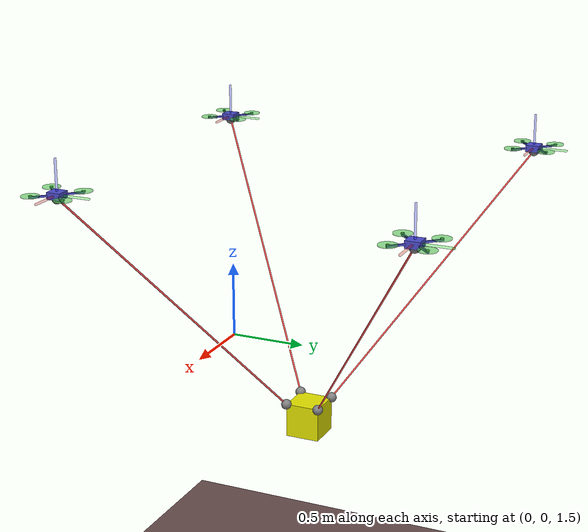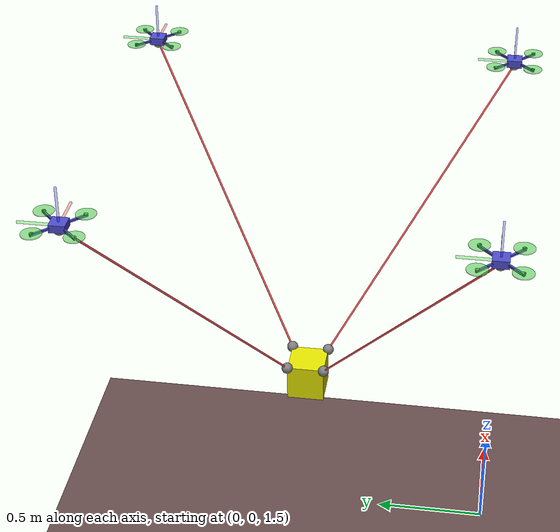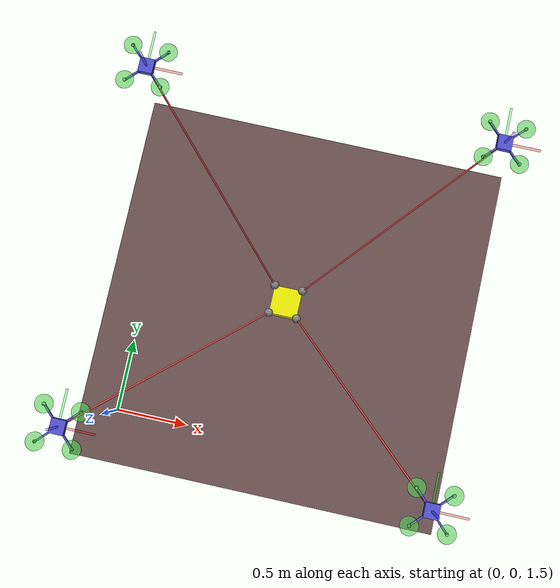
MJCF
<!--
Quadcopter with x configuration.
Front: Along body X-axis
-->

<mujoco model="quadrotor_x">
    <compiler angle="degree" inertiafromgeom="true" coordinate="local" />
    <option timestep="0.01" gravity="0 0 0" density="1" viscosity="1e-5" integrator="RK4" />

    <default>
        <joint armature="1" damping="1" limited="true" />
        <geom conaffinity="0" condim="3" density="5.0" friction="1 0.5 0.5" margin="0.01"
            rgba="0.8 0.6 0.4 1" />
    </default>

    <asset>
        <texture builtin="gradient" type="skybox" height="100" width="100" rgb1="1 1 1" rgb2="0 0 0" />
        <texture name="texgeom" builtin="flat" height="1278" mark="cross" markrgb="1 1 1"
            random="0.01" rgb1="0.8 0.6 0.4" rgb2="0.8 0.6 0.4" type="cube" width="127" />
        <texture name="texplane" builtin="checker" height="100" width="100" rgb1="0 0 0"
            rgb2="0.8 0.8 0.8" type="2d" />
        <material name="MatPlane" reflectance="0" shininess="1" specular="1" texrepeat="60 60"
            texture="texplane" />
        <material name="geom" texture="texgeom" texuniform="true" />
    </asset>

    <worldbody>
        <light cutoff="100" diffuse="1 1 1" dir="-0 0 -1.3" directional="true" exponent="1"
            pos="0 0 1.3" specular=".1 .1 .1" />
        <geom type="plane" conaffinity="1" condim="3" material="MatPlane" name="floor" pos="0 0 0"
            rgba="0.4 0.3 0.3 1" size="5 5 0.2" />

        <!-- core1 -->
        <body name="core1" pos="0 0 3.0">
            <joint name="root1" type="free" damping="0" armature="0" pos="0 0 0" limited="false" />
            <camera name="track1" mode="trackcom" pos="0 -3 1.0" xyaxes="1 0 0 0 0 1" />

            <!-- center -->
            <geom name="core_geom1" type="box" pos="0 0 0" quat="1 0 0 0" size=".04 .04 .02"
                rgba=".3 .3 .8 1" mass=".1" />
            <site name='qua_con1' pos='0 0 -0.02' size='0.03'/>

            <geom name="arm_front_left1" type="box" pos=".07 .07 0" size=".05 .005 .005"
                quat=".924 0 0 .383" rgba=".3 .3 .8 1" mass=".025" />
            <geom name="arm_front_right1" type="box" pos=".07 -.07 0" size=".05 .005 .005"
                quat=".383 0 0 .924" rgba=".3 .3 .8 1" mass=".025" />
            <geom name="arm_back_right1" type="box" pos="-.07 -.07 0" size=".05 .005 .005"
                quat="-.383 0 0 .924" rgba=".3 .3 .8 1" mass=".025" />
            <geom name="arm_back_left1" type="box" pos="-.07 .07 0" size=".05 .005 .005"
                quat=".924 0 0 -.383" rgba=".3 .3 .8 1" mass=".025" />

            <site name="motor_front_left1" type="cylinder" pos=".1 .1 .0075" size=".01 .0025"
                quat="1 0 0 0" rgba=".3 .8 .3 1" />
            <site name="motor_front_right1" type="cylinder" pos=".1 -.1 .0075" size=".01 .0025"
                quat="1 0 0 0" rgba=".3 .8 .3 1" />
            <site name="motor_back_right1" type="cylinder" pos="-.1 -.1 .0075" size=".01 .0025"
                quat="1 0 0 0" rgba=".3 .8 .3 1" />
            <site name="motor_back_left1" type="cylinder" pos="-.1  .1 .0075" size=".01 .0025"
                quat="1 0 0 0" rgba=".3 .8 .3 1" />

            <geom name="thruster_front_left1" type="cylinder" pos=".1 .1 .0075" size=".05 .0025"
                quat="1 0 0 0" rgba=".3 .8 .3 0.6" mass=".025" />
            <geom name="thruster_front_right1" type="cylinder" pos=".1 -.1 .0075" size=".05 .0025"
                quat="1 0 0 0" rgba=".3 .8 .3 0.6" mass=".025" />
            <geom name="thruster_back_right1" type="cylinder" pos="-.1 -.1 .0075" size=".05 .0025"
                quat="1 0 0 0" rgba=".3 .8 .3 0.6" mass=".025" />
            <geom name="thruster_back_left1" type="cylinder" pos="-.1 .1 .0075" size=".05 .0025"
                quat="1 0 0 0" rgba=".3 .8 .3 0.6" mass=".025" />

            <site name="x_axis1" type="box" pos=".1 0 0" size=".1 .005 .005" quat="1 0 0 0"
                rgba="1 0 0 0.3" />
            <site name="y_axis1" type="box" pos="0 .1 0" size=".1 .005 .005" quat=".707 0 0 .707"
                rgba="0 1 0 0.3" />
            <site name="z_axis1" type="box" pos="0 0 .1" size=".1 .005 .005" quat="-.707 0 .707 0"
                rgba="0 0 1 0.3" />

        </body>

        <!-- core2 -->
        <body name="core2" pos="2.0 0 3.0">
            <joint name="root2" type="free" damping="0" armature="0" pos="0 0 0" limited="false" />
            <camera name="track2" mode="trackcom" pos="0 -3 1.0" xyaxes="1 0 0 0 0 1" />

            <!-- center -->
            <geom name="core_geom2" type="box" pos="0 0 0" quat="1 0 0 0" size=".04 .04 .02"
                rgba=".3 .3 .8 1" mass=".1" />
            <site name='qua_con2' pos='0 0 -0.02' size='0.03'/>

            <geom name="arm_front_left2" type="box" pos=".07 .07 0" size=".05 .005 .005"
                quat=".924 0 0 .383" rgba=".3 .3 .8 1" mass=".025" />
            <geom name="arm_front_right2" type="box" pos=".07 -.07 0" size=".05 .005 .005"
                quat=".383 0 0 .924" rgba=".3 .3 .8 1" mass=".025" />
            <geom name="arm_back_right2" type="box" pos="-.07 -.07 0" size=".05 .005 .005"
                quat="-.383 0 0 .924" rgba=".3 .3 .8 1" mass=".025" />
            <geom name="arm_back_left2" type="box" pos="-.07 .07 0" size=".05 .005 .005"
                quat=".924 0 0 -.383" rgba=".3 .3 .8 1" mass=".025" />

            <site name="motor_front_left2" type="cylinder" pos=".1 .1 .0075" size=".01 .0025"
                quat="1 0 0 0" rgba=".3 .8 .3 1" />
            <site name="motor_front_right2" type="cylinder" pos=".1 -.1 .0075" size=".01 .0025"
                quat="1 0 0 0" rgba=".3 .8 .3 1" />
            <site name="motor_back_right2" type="cylinder" pos="-.1 -.1 .0075" size=".01 .0025"
                quat="1 0 0 0" rgba=".3 .8 .3 1" />
            <site name="motor_back_left2" type="cylinder" pos="-.1  .1 .0075" size=".01 .0025"
                quat="1 0 0 0" rgba=".3 .8 .3 1" />

            <geom name="thruster_front_left2" type="cylinder" pos=".1 .1 .0075" size=".05 .0025"
                quat="1 0 0 0" rgba=".3 .8 .3 0.6" mass=".025" />
            <geom name="thruster_front_right2" type="cylinder" pos=".1 -.1 .0075"
                size=".05 .0025" quat="1 0 0 0" rgba=".3 .8 .3 0.6" mass=".025" />
            <geom name="thruster_back_right2" type="cylinder" pos="-.1 -.1 .0075"
                size=".05 .0025" quat="1 0 0 0" rgba=".3 .8 .3 0.6" mass=".025" />
            <geom name="thruster_back_left2" type="cylinder" pos="-.1 .1 .0075" size=".05 .0025"
                quat="1 0 0 0" rgba=".3 .8 .3 0.6" mass=".025" />

            <site name="x_axis2" type="box" pos=".1 0 0" size=".1 .005 .005" quat="1 0 0 0"
                rgba="1 0 0 0.3" />
            <site name="y_axis2" type="box" pos="0 .1 0" size=".1 .005 .005" quat=".707 0 0 .707"
                rgba="0 1 0 0.3" />
            <site name="z_axis2" type="box" pos="0 0 .1" size=".1 .005 .005"
                quat="-.707 0 .707 0" rgba="0 0 1 0.3" />

        </body>

        <!-- core3 -->
        <body name="core3" pos="2.0 2.0 3.0">
            <joint name="root3" type="free" damping="0" armature="0" pos="0 0 0" limited="false" />
            <camera name="track3" mode="trackcom" pos="0 -3 1.0" xyaxes="1 0 0 0 0 1" />

            <!-- center -->
            <geom name="core_geom3" type="box" pos="0 0 0" quat="1 0 0 0" size=".04 .04 .02"
                rgba=".3 .3 .8 1" mass=".1" />
            <site name='qua_con3' pos='0 0 -0.02' size='0.03'/>

            <geom name="arm_front_left3" type="box" pos=".07 .07 0" size=".05 .005 .005"
                quat=".924 0 0 .383" rgba=".3 .3 .8 1" mass=".025" />
            <geom name="arm_front_right3" type="box" pos=".07 -.07 0" size=".05 .005 .005"
                quat=".383 0 0 .924" rgba=".3 .3 .8 1" mass=".025" />
            <geom name="arm_back_right3" type="box" pos="-.07 -.07 0" size=".05 .005 .005"
                quat="-.383 0 0 .924" rgba=".3 .3 .8 1" mass=".025" />
            <geom name="arm_back_left3" type="box" pos="-.07 .07 0" size=".05 .005 .005"
                quat=".924 0 0 -.383" rgba=".3 .3 .8 1" mass=".025" />

            <site name="motor_front_left3" type="cylinder" pos=".1 .1 .0075" size=".01 .0025"
                quat="1 0 0 0" rgba=".3 .8 .3 1" />
            <site name="motor_front_right3" type="cylinder" pos=".1 -.1 .0075" size=".01 .0025"
                quat="1 0 0 0" rgba=".3 .8 .3 1" />
            <site name="motor_back_right3" type="cylinder" pos="-.1 -.1 .0075" size=".01 .0025"
                quat="1 0 0 0" rgba=".3 .8 .3 1" />
            <site name="motor_back_left3" type="cylinder" pos="-.1  .1 .0075" size=".01 .0025"
                quat="1 0 0 0" rgba=".3 .8 .3 1" />

            <geom name="thruster_front_left3" type="cylinder" pos=".1 .1 .0075" size=".05 .0025"
                quat="1 0 0 0" rgba=".3 .8 .3 0.6" mass=".025" />
            <geom name="thruster_front_right3" type="cylinder" pos=".1 -.1 .0075"
                size=".05 .0025" quat="1 0 0 0" rgba=".3 .8 .3 0.6" mass=".025" />
            <geom name="thruster_back_right3" type="cylinder" pos="-.1 -.1 .0075"
                size=".05 .0025" quat="1 0 0 0" rgba=".3 .8 .3 0.6" mass=".025" />
            <geom name="thruster_back_left3" type="cylinder" pos="-.1 .1 .0075" size=".05 .0025"
                quat="1 0 0 0" rgba=".3 .8 .3 0.6" mass=".025" />

            <site name="x_axis3" type="box" pos=".1 0 0" size=".1 .005 .005" quat="1 0 0 0"
                rgba="1 0 0 0.3" />
            <site name="y_axis3" type="box" pos="0 .1 0" size=".1 .005 .005" quat=".707 0 0 .707"
                rgba="0 1 0 0.3" />
            <site name="z_axis3" type="box" pos="0 0 .1" size=".1 .005 .005"
                quat="-.707 0 .707 0" rgba="0 0 1 0.3" />

        </body>

        <!-- core4 -->
        <body name="core4" pos="0.0 2.0 3.0">
            <joint name="root4" type="free" damping="0" armature="0" pos="0 0 0" limited="false" />
            <camera name="track4" mode="trackcom" pos="0 -3 1.0" xyaxes="1 0 0 0 0 1" />

            <!-- center -->
            <geom name="core_geom4" type="box" pos="0 0 0" quat="1 0 0 0" size=".04 .04 .02"
                rgba=".3 .3 .8 1" mass=".1" />
            <site name='qua_con4' pos='0 0 -0.02' size='0.03'/>

            <geom name="arm_front_left4" type="box" pos=".07 .07 0" size=".05 .005 .005"
                quat=".924 0 0 .383" rgba=".3 .3 .8 1" mass=".025" />
            <geom name="arm_front_right4" type="box" pos=".07 -.07 0" size=".05 .005 .005"
                quat=".383 0 0 .924" rgba=".3 .3 .8 1" mass=".025" />
            <geom name="arm_back_right4" type="box" pos="-.07 -.07 0" size=".05 .005 .005"
                quat="-.383 0 0 .924" rgba=".3 .3 .8 1" mass=".025" />
            <geom name="arm_back_left4" type="box" pos="-.07 .07 0" size=".05 .005 .005"
                quat=".924 0 0 -.383" rgba=".3 .3 .8 1" mass=".025" />

            <site name="motor_front_left4" type="cylinder" pos=".1 .1 .0075" size=".01 .0025"
                quat="1 0 0 0" rgba=".3 .8 .3 1" />
            <site name="motor_front_right4" type="cylinder" pos=".1 -.1 .0075" size=".01 .0025"
                quat="1 0 0 0" rgba=".3 .8 .3 1" />
            <site name="motor_back_right4" type="cylinder" pos="-.1 -.1 .0075" size=".01 .0025"
                quat="1 0 0 0" rgba=".3 .8 .3 1" />
            <site name="motor_back_left4" type="cylinder" pos="-.1  .1 .0075" size=".01 .0025"
                quat="1 0 0 0" rgba=".3 .8 .3 1" />

            <geom name="thruster_front_left4" type="cylinder" pos=".1 .1 .0075" size=".05 .0025"
                quat="1 0 0 0" rgba=".3 .8 .3 0.6" mass=".025" />
            <geom name="thruster_front_right4" type="cylinder" pos=".1 -.1 .0075"
                size=".05 .0025" quat="1 0 0 0" rgba=".3 .8 .3 0.6" mass=".025" />
            <geom name="thruster_back_right4" type="cylinder" pos="-.1 -.1 .0075"
                size=".05 .0025" quat="1 0 0 0" rgba=".3 .8 .3 0.6" mass=".025" />
            <geom name="thruster_back_left4" type="cylinder" pos="-.1 .1 .0075" size=".05 .0025"
                quat="1 0 0 0" rgba=".3 .8 .3 0.6" mass=".025" />

            <site name="x_axis4" type="box" pos=".1 0 0" size=".1 .005 .005" quat="1 0 0 0"
                rgba="1 0 0 0.3" />
            <site name="y_axis4" type="box" pos="0 .1 0" size=".1 .005 .005" quat=".707 0 0 .707"
                rgba="0 1 0 0.3" />
            <site name="z_axis4" type="box" pos="0 0 .1" size=".1 .005 .005"
                quat="-.707 0 .707 0" rgba="0 0 1 0.3" />

        </body>

        <!-- object -->
        <body name='object' pos="1 1 1.5">
			<joint type="free"/>
			<geom type="box" size="0.1 .1 .1" rgba="0.9 0.9 0 1"/>
            <site name='obj_con1' pos='-0.1 -0.1 0.1' size='0.03'/>
            <site name='obj_con2' pos='0.1 -0.1 0.1' size='0.03'/>
            <site name='obj_con3' pos='0.1 0.1 0.1' size='0.03'/>
            <site name='obj_con4' pos='-0.1 0.1 0.1' size='0.03'/>
        </body>

    </worldbody>

    <!-- rope -->
    <tendon>
        <spatial width="0.005" rgba=".95 .3 .3 1" limited="true" range="0 5" frictionloss="100"
            damping="100">
            <site site="qua_con1" />
            <site site="obj_con1" />
        </spatial>
    </tendon>
    <tendon>
        <spatial width="0.005" rgba=".95 .3 .3 1" limited="true" range="0 5" frictionloss="100"
            damping="100">
            <site site="qua_con2" />
            <site site="obj_con2" />
        </spatial>
    </tendon>
    <tendon>
        <spatial width="0.005" rgba=".95 .3 .3 1" limited="true" range="0 5" frictionloss="100"
            damping="100">
            <site site="qua_con3" />
            <site site="obj_con3" />
        </spatial>
    </tendon>
    <tendon>
        <spatial width="0.005" rgba=".95 .3 .3 1" limited="true" range="0 5" frictionloss="100"
            damping="100">
            <site site="qua_con4" />
            <site site="obj_con4" />
        </spatial>
    </tendon>

    <actuator>
        <!-- core1 -->
        <motor ctrllimited="true" ctrlrange="0 1" gear="0 0 1 0 0 -.1" site="motor_front_left1" />
        <motor ctrllimited="true" ctrlrange="0 1" gear="0 0 1 0 0 .1" site="motor_back_left1" />
        <motor ctrllimited="true" ctrlrange="0 1" gear="0 0 1 0 0 -.1" site="motor_back_right1" />
        <motor ctrllimited="true" ctrlrange="0 1" gear="0 0 1 0 0 .1" site="motor_front_right1" />

        <!-- core2 -->
        <motor ctrllimited="true" ctrlrange="0 1" gear="0 0 1 0 0 -.1" site="motor_front_left2" />
        <motor ctrllimited="true" ctrlrange="0 1" gear="0 0 1 0 0 .1" site="motor_back_left2" />
        <motor ctrllimited="true" ctrlrange="0 1" gear="0 0 1 0 0 -.1" site="motor_back_right2" />
        <motor ctrllimited="true" ctrlrange="0 1" gear="0 0 1 0 0 .1" site="motor_front_right2" />

        <!-- core3 -->
        <motor ctrllimited="true" ctrlrange="0 1" gear="0 0 1 0 0 -.1" site="motor_front_left3" />
        <motor ctrllimited="true" ctrlrange="0 1" gear="0 0 1 0 0 .1" site="motor_back_left3" />
        <motor ctrllimited="true" ctrlrange="0 1" gear="0 0 1 0 0 -.1" site="motor_back_right3" />
        <motor ctrllimited="true" ctrlrange="0 1" gear="0 0 1 0 0 .1" site="motor_front_right3" />

        <!-- core4 -->
        <motor ctrllimited="true" ctrlrange="0 1" gear="0 0 1 0 0 -.1" site="motor_front_left4" />
        <motor ctrllimited="true" ctrlrange="0 1" gear="0 0 1 0 0 .1" site="motor_back_left4" />
        <motor ctrllimited="true" ctrlrange="0 1" gear="0 0 1 0 0 -.1" site="motor_back_right4" />
        <motor ctrllimited="true" ctrlrange="0 1" gear="0 0 1 0 0 .1" site="motor_front_right4" />
    </actuator>

</mujoco>
